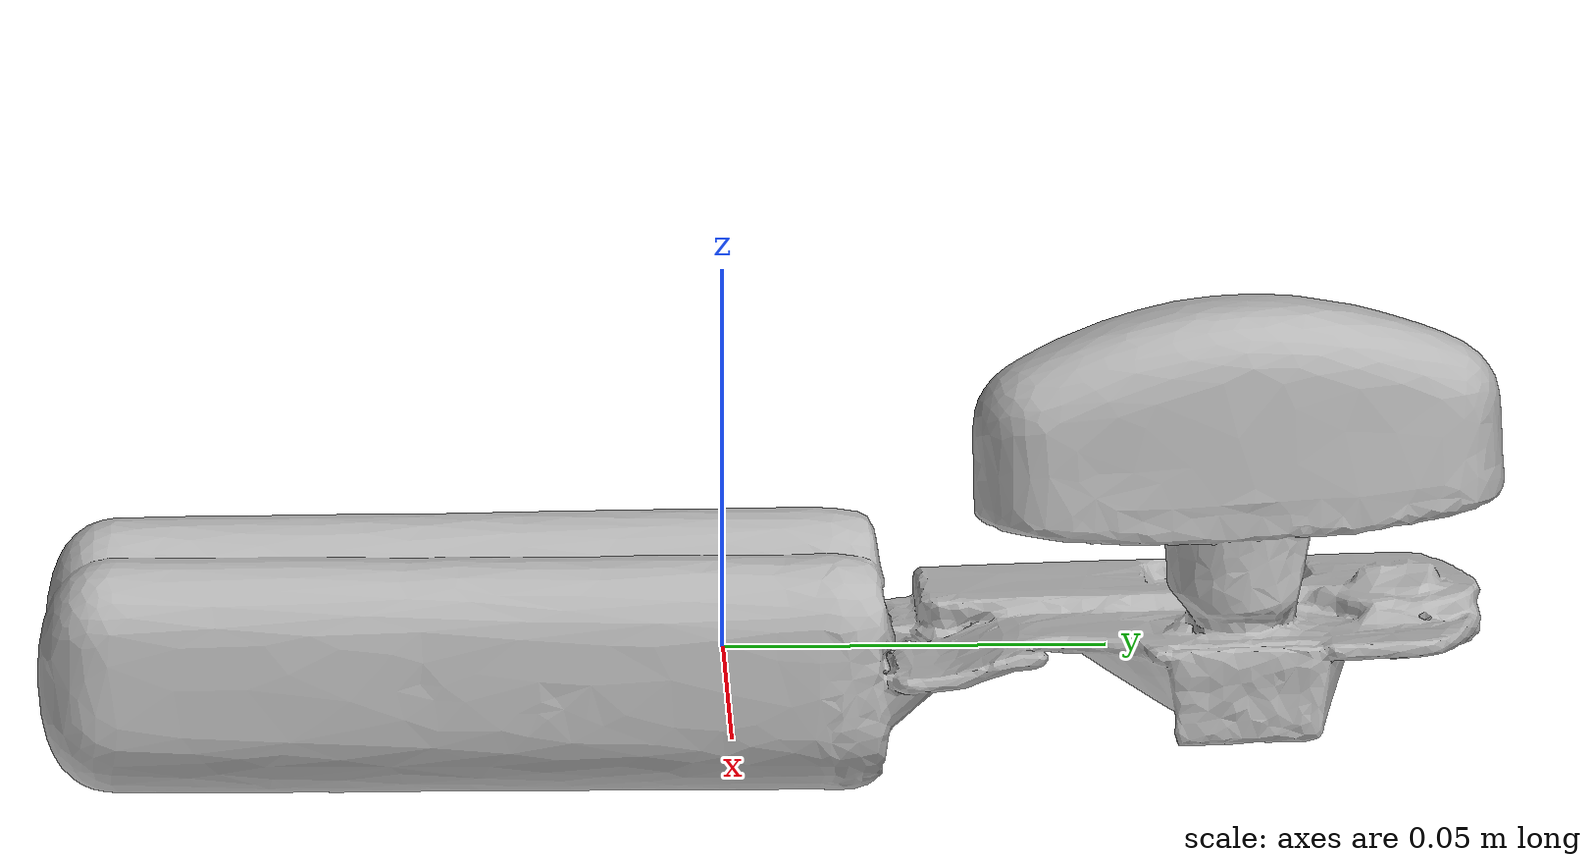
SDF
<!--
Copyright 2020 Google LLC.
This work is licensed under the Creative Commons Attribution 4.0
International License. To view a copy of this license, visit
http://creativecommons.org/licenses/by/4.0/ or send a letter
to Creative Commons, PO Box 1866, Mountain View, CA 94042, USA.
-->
<?xml version="1.0" ?>
<sdf version="1.6">
  <model name="Granimals_20_Wooden_ABC_Blocks_Wagon">
    <link name="link_0">
      <visual name="visual">
        <geometry>
          <mesh>
            <uri>meshes/model.obj</uri>
          </mesh>
        </geometry>
      </visual>
      <collision name="collision_0">
        <geometry>
          <mesh>
            <uri>meshes/model.obj</uri>
          </mesh>
        </geometry>
      </collision>
    </link>
  </model>
</sdf>
